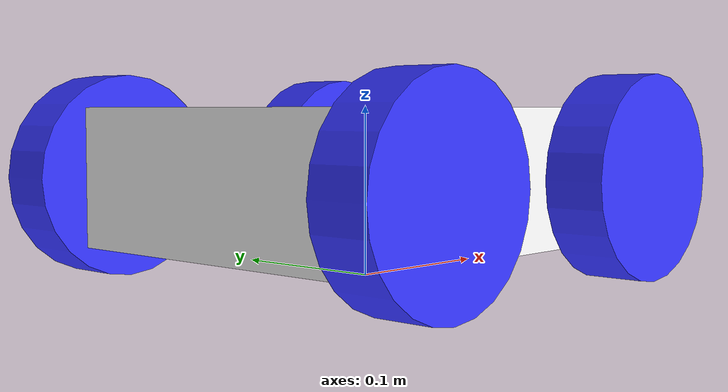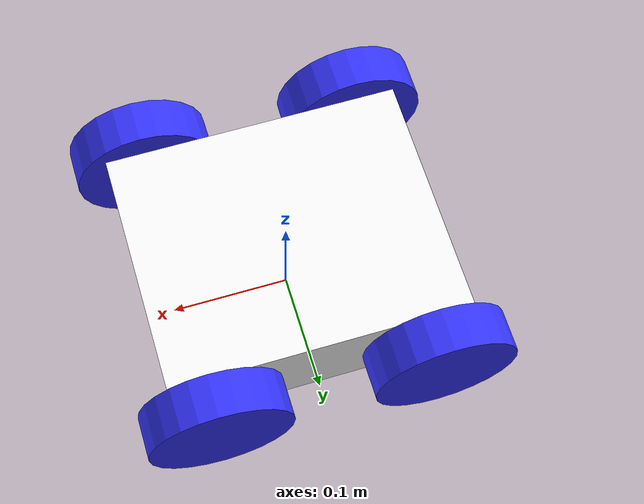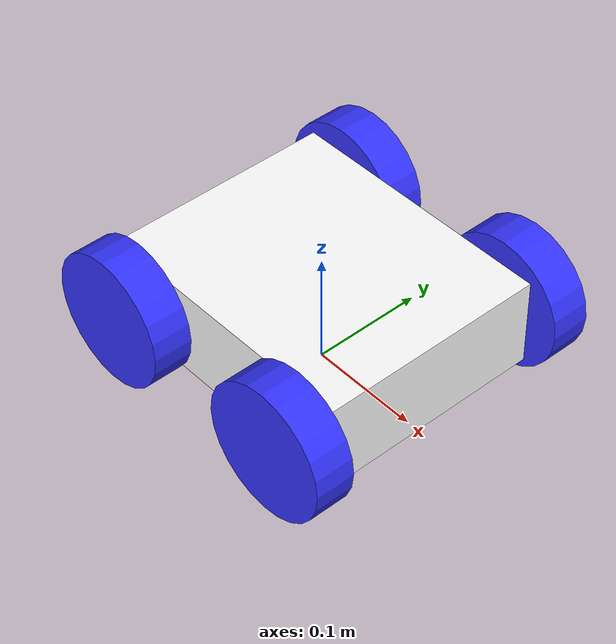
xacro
<?xml version="1.0"?>
<robot xmlns:xacro="http://www.ros.org/wiki/xacro">

    <xacro:include filename="inertial_macros.xacro"/>

    <material name="white">
        <color rgba="1 1 1 1"/>
    </material>

    <material name="orange">
        <color rgba="1 0.3 0.1 1"/>
    </material>

    <material name="blue">
        <color rgba="0.2 0.2 1 1"/>
    </material>

    <material name="black">
        <color rgba="0 0 0 1"/>
    </material>

    <material name="red">
        <color rgba="1 0 0 1"/>
    </material>

    <!-- BASE LINK -->

    <link name="base_link">

    </link>

    <!-- BASE_FOOTPRINT LINK -->
    <joint name="base_footprint_joint" type="fixed">
        <parent link="base_link"/>
        <child link="base_footprint"/>
        <origin xyz="0 0 0" rpy="0 0 0"/>
    </joint>

    <link name="base_footprint">
    </link>

    <!-- CHASSIS LINK -->

    <joint name="chassis_joint" type="fixed">
        <parent link="base_link"/>
        <child link="chassis"/>
        <origin xyz="0 0 0.0591"/>
    </joint>

    <link name="chassis">
        <visual>
            <origin xyz="0 0 0"/>
            <geometry>
                <box size="0.24765 0.2032 0.08"/>
            </geometry>
            <material name="white"/>
        </visual>
        <collision>
            <origin xyz="0 0 0"/>
            <geometry>
                <box size="0.24765 0.2032 0.08"/>
            </geometry>
        </collision>
        <xacro:inertial_box mass="0.7" x="0.24765" y="0.2032" z="0.08">
            <origin xyz="0 0 0" rpy="0 0 0"/>
        </xacro:inertial_box>
    </link>

    <gazebo reference="chassis">
        <material>Gazebo/White</material>
    </gazebo>

    <!-- FRONT LEFT WHEEL LINK -->

    <joint name="front_left_wheel_joint" type="continuous">
        <parent link="chassis"/>
        <child link="front_left_wheel"/>
        <origin xyz="0.092075 0.1214 0" rpy="0 0 0"/>
        <axis xyz="0 1 0"/>
    </joint>

    <link name="front_left_wheel">
        <visual>
            <origin xyz="0 0 0" rpy="1.5708 0 0"/>
            <geometry>
                <cylinder radius="0.0591" length="0.034925"/>
            </geometry>
            <material name="blue"/>
        </visual>
        <collision>
            <origin xyz="0 0 0" rpy="1.5708 0 0"/>
            <geometry>
                <cylinder radius="0.0591" length="0.034925"/>
            </geometry>
        </collision>
        <xacro:inertial_cylinder mass="0.2" length="0.034925" radius="0.0591">
            <origin xyz="0 0 0" rpy="1.5708 0 0"/>
        </xacro:inertial_cylinder>
    </link>

    <gazebo reference="front_left_wheel">
        <material>Gazebo/Blue</material>
    </gazebo>

        <!-- FRONT RIGHT WHEEL LINK -->

    <joint name="front_right_wheel_joint" type="continuous">
        <parent link="chassis"/>
        <child link="front_right_wheel"/>
        <origin xyz="0.092075 -0.1214 0" rpy="0 0 0"/>
        <axis xyz="0 1 0"/>
    </joint>

    <link name="front_right_wheel">
        <visual>
            <origin xyz="0 0 0" rpy="1.5708 0 0"/>
            <geometry>
                <cylinder radius="0.0591" length="0.034925"/>
            </geometry>
            <material name="blue"/>
        </visual>
        <collision>
            <origin xyz="0 0 0" rpy="1.5708 0 0"/>
            <geometry>
                <cylinder radius="0.0591" length="0.034925"/>
            </geometry>
        </collision>
        <xacro:inertial_cylinder mass="0.2" length="0.034925" radius="0.0591">
            <origin xyz="0 0 0" rpy="1.5708 0 0"/>
        </xacro:inertial_cylinder>
    </link>

    <gazebo reference="front_right_wheel">
        <material>Gazebo/Blue</material>
    </gazebo>

        <!-- BACK LEFT WHEEL LINK -->

    <joint name="back_left_wheel_joint" type="continuous">
        <parent link="chassis"/>
        <child link="back_left_wheel"/>
        <origin xyz="-0.092075 0.1214 0" rpy="0 0 0"/>
        <axis xyz="0 1 0"/>
    </joint>

    <link name="back_left_wheel">
        <visual>
            <origin xyz="0 0 0" rpy="1.5708 0 0"/>
            <geometry>
                <cylinder radius="0.0591" length="0.034925"/>
            </geometry>
            <material name="blue"/>
        </visual>
        <collision>
            <origin xyz="0 0 0" rpy="1.5708 0 0"/>
            <geometry>
                <cylinder radius="0.0591" length="0.034925"/>
            </geometry>
        </collision>
        <xacro:inertial_cylinder mass="0.2" length="0.034925" radius="0.0591">
            <origin xyz="0 0 0" rpy="1.5708 0 0"/>
        </xacro:inertial_cylinder>
    </link>

    <gazebo reference="back_left_wheel">
        <material>Gazebo/Blue</material>
    </gazebo>

        <!-- BACK RIGHT WHEEL LINK -->

    <joint name="back_right_wheel_joint" type="continuous">
        <parent link="chassis"/>
        <child link="back_right_wheel"/>
        <origin xyz="-0.092075 -0.1214 0" rpy="0 0 0"/>
        <axis xyz="0 1 0"/>
    </joint>

    <link name="back_right_wheel">
        <visual>
            <origin xyz="0 0 0" rpy="1.5708 0 0"/>
            <geometry>
                <cylinder radius="0.0591" length="0.034925"/>
            </geometry>
            <material name="blue"/>
        </visual>
        <collision>
            <origin xyz="0 0 0" rpy="1.5708 0 0"/>
            <geometry>
                <cylinder radius="0.0591" length="0.034925"/>
            </geometry>
        </collision>
        <xacro:inertial_cylinder mass="0.2" length="0.034925" radius="0.0591">
            <origin xyz="0 0 0" rpy="1.5708 0 0"/>
        </xacro:inertial_cylinder>
    </link>

    <gazebo reference="back_right_wheel">
        <material>Gazebo/Blue</material>
    </gazebo>

</robot>
